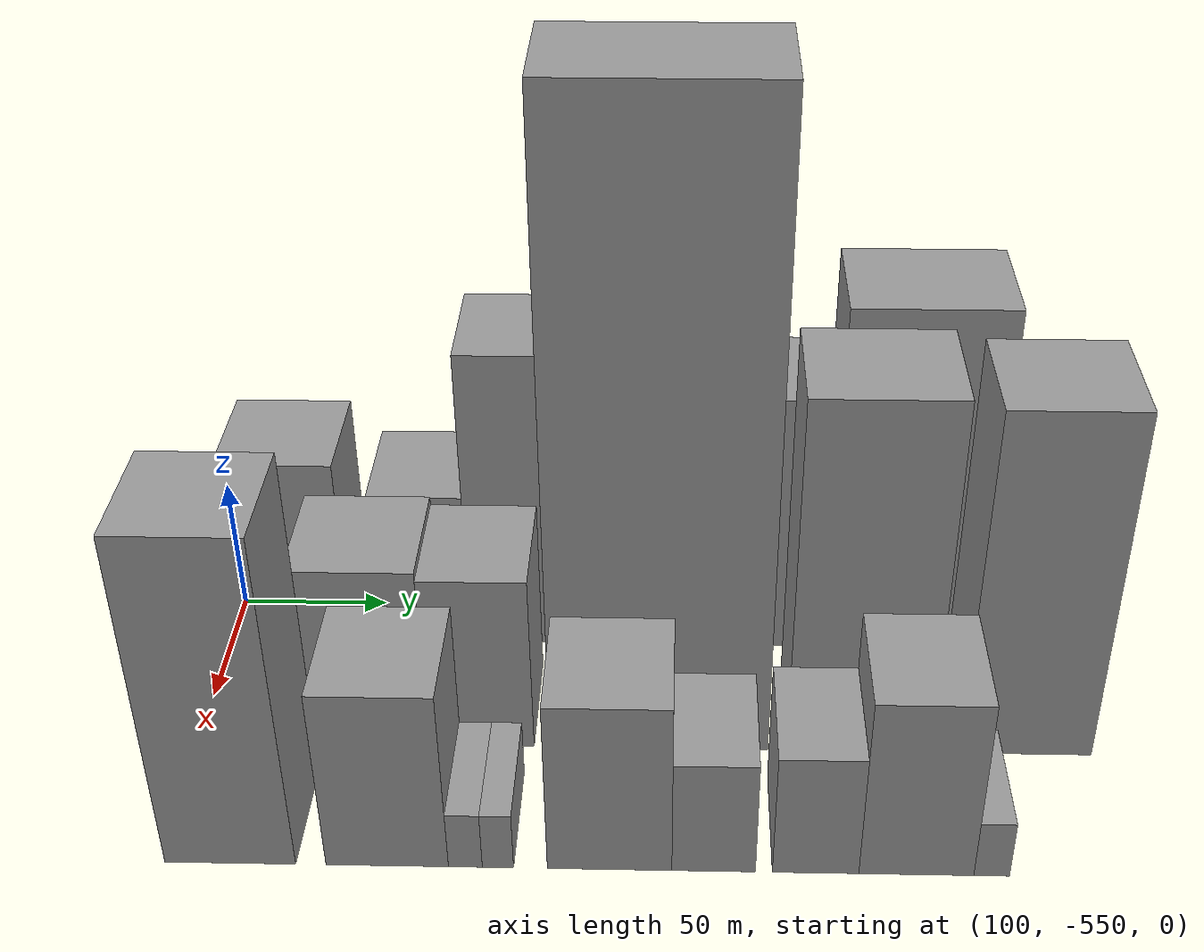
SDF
<sdf version="1.6">
 <world name="default">
  <model name="building_1">
   <static>1</static>
   <pose>100.0000 -528.5926 0 0.000000 0.000000 0.000000</pose>
   <link name="link">
    <pose>0 0 36.00 0 0 0</pose>
    <collision name="collision"><geometry><box><size>40.0000 38.8148 72.0000</size></box></geometry></collision>
    <visual name="visual">
     <cast_shadows>0</cast_shadows>
     <geometry><box><size>40.0000 38.8148 72.0000</size></box></geometry>
     <material>
      <script>
       <uri>model://grey_wall/materials/scripts</uri>
       <uri>model://grey_wall/materials/textures</uri>
       <name>vrc/grey_wall</name>
      </script>
     </material>
    </visual>
   </link>
  </model>
  <model name="building_2">
   <static>1</static>
   <pose>100.0000 -504.1947 0 0.000000 0.000000 0.000000</pose>
   <link name="link">
    <pose>0 0 10.50 0 0 0</pose>
    <collision name="collision"><geometry><box><size>40.0000 9.9809 21.0000</size></box></geometry></collision>
    <visual name="visual">
     <cast_shadows>0</cast_shadows>
     <geometry><box><size>40.0000 9.9809 21.0000</size></box></geometry>
     <material>
      <script>
       <uri>model://grey_wall/materials/scripts</uri>
       <uri>model://grey_wall/materials/textures</uri>
       <name>vrc/grey_wall</name>
      </script>
     </material>
    </visual>
   </link>
  </model>
  <model name="building_3">
   <static>1</static>
   <pose>100.0000 -483.4879 0 0.000000 0.000000 0.000000</pose>
   <link name="link">
    <pose>0 0 30.00 0 0 0</pose>
    <collision name="collision"><geometry><box><size>40.0000 31.4326 60.0000</size></box></geometry></collision>
    <visual name="visual">
     <cast_shadows>0</cast_shadows>
     <geometry><box><size>40.0000 31.4326 60.0000</size></box></geometry>
     <material>
      <script>
       <uri>model://grey_wall/materials/scripts</uri>
       <uri>model://grey_wall/materials/textures</uri>
       <name>vrc/grey_wall</name>
      </script>
     </material>
    </visual>
   </link>
  </model>
  <model name="building_4">
   <static>1</static>
   <pose>100.0000 -450.0955 0 0.000000 0.000000 0.000000</pose>
   <link name="link">
    <pose>0 0 57.00 0 0 0</pose>
    <collision name="collision"><geometry><box><size>40.0000 35.3523 114.0000</size></box></geometry></collision>
    <visual name="visual">
     <cast_shadows>0</cast_shadows>
     <geometry><box><size>40.0000 35.3523 114.0000</size></box></geometry>
     <material>
      <script>
       <uri>model://grey_wall/materials/scripts</uri>
       <uri>model://grey_wall/materials/textures</uri>
       <name>vrc/grey_wall</name>
      </script>
     </material>
    </visual>
   </link>
  </model>
  <model name="building_5">
   <static>1</static>
   <pose>100.0000 -412.2819 0 0.000000 0.000000 0.000000</pose>
   <link name="link">
    <pose>0 0 30.00 0 0 0</pose>
    <collision name="collision"><geometry><box><size>40.0000 30.2750 60.0000</size></box></geometry></collision>
    <visual name="visual">
     <cast_shadows>0</cast_shadows>
     <geometry><box><size>40.0000 30.2750 60.0000</size></box></geometry>
     <material>
      <script>
       <uri>model://grey_wall/materials/scripts</uri>
       <uri>model://grey_wall/materials/textures</uri>
       <name>vrc/grey_wall</name>
      </script>
     </material>
    </visual>
   </link>
  </model>
  <model name="building_6">
   <static>1</static>
   <pose>100.0000 -391.4086 0 0.000000 0.000000 0.000000</pose>
   <link name="link">
    <pose>0 0 12.00 0 0 0</pose>
    <collision name="collision"><geometry><box><size>40.0000 11.4717 24.0000</size></box></geometry></collision>
    <visual name="visual">
     <cast_shadows>0</cast_shadows>
     <geometry><box><size>40.0000 11.4717 24.0000</size></box></geometry>
     <material>
      <script>
       <uri>model://grey_wall/materials/scripts</uri>
       <uri>model://grey_wall/materials/textures</uri>
       <name>vrc/grey_wall</name>
      </script>
     </material>
    </visual>
   </link>
  </model>
  <model name="building_7">
   <static>1</static>
   <pose>100.0000 -362.1813 0 0.000000 0.000000 0.000000</pose>
   <link name="link">
    <pose>0 0 49.50 0 0 0</pose>
    <collision name="collision"><geometry><box><size>40.0000 32.9830 99.0000</size></box></geometry></collision>
    <visual name="visual">
     <cast_shadows>0</cast_shadows>
     <geometry><box><size>40.0000 32.9830 99.0000</size></box></geometry>
     <material>
      <script>
       <uri>model://grey_wall/materials/scripts</uri>
       <uri>model://grey_wall/materials/textures</uri>
       <name>vrc/grey_wall</name>
      </script>
     </material>
    </visual>
   </link>
  </model>
  <model name="building_8">
   <static>1</static>
   <pose>100.0000 -319.3064 0 0.000000 0.000000 0.000000</pose>
   <link name="link">
    <pose>0 0 66.00 0 0 0</pose>
    <collision name="collision"><geometry><box><size>40.0000 52.7667 132.0000</size></box></geometry></collision>
    <visual name="visual">
     <cast_shadows>0</cast_shadows>
     <geometry><box><size>40.0000 52.7667 132.0000</size></box></geometry>
     <material>
      <script>
       <uri>model://grey_wall/materials/scripts</uri>
       <uri>model://grey_wall/materials/textures</uri>
       <name>vrc/grey_wall</name>
      </script>
     </material>
    </visual>
   </link>
  </model>
  <model name="building_9">
   <static>1</static>
   <pose>100.0000 -280.9358 0 0.000000 0.000000 0.000000</pose>
   <link name="link">
    <pose>0 0 10.50 0 0 0</pose>
    <collision name="collision"><geometry><box><size>40.0000 9.9746 21.0000</size></box></geometry></collision>
    <visual name="visual">
     <cast_shadows>0</cast_shadows>
     <geometry><box><size>40.0000 9.9746 21.0000</size></box></geometry>
     <material>
      <script>
       <uri>model://grey_wall/materials/scripts</uri>
       <uri>model://grey_wall/materials/textures</uri>
       <name>vrc/grey_wall</name>
      </script>
     </material>
    </visual>
   </link>
  </model>
  <model name="building_34">
   <static>1</static>
   <pose>152.0000 -533.8637 0 0.000000 0.000000 0.000000</pose>
   <link name="link">
    <pose>0 0 24.00 0 0 0</pose>
    <collision name="collision"><geometry><box><size>40.0000 28.2725 48.0000</size></box></geometry></collision>
    <visual name="visual">
     <cast_shadows>0</cast_shadows>
     <geometry><box><size>40.0000 28.2725 48.0000</size></box></geometry>
     <material>
      <script>
       <uri>model://grey_wall/materials/scripts</uri>
       <uri>model://grey_wall/materials/textures</uri>
       <name>vrc/grey_wall</name>
      </script>
     </material>
    </visual>
   </link>
  </model>
  <model name="building_35">
   <static>1</static>
   <pose>152.0000 -495.7774 0 0.000000 0.000000 0.000000</pose>
   <link name="link">
    <pose>0 0 34.50 0 0 0</pose>
    <collision name="collision"><geometry><box><size>40.0000 39.9002 69.0000</size></box></geometry></collision>
    <visual name="visual">
     <cast_shadows>0</cast_shadows>
     <geometry><box><size>40.0000 39.9002 69.0000</size></box></geometry>
     <material>
      <script>
       <uri>model://grey_wall/materials/scripts</uri>
       <uri>model://grey_wall/materials/textures</uri>
       <name>vrc/grey_wall</name>
      </script>
     </material>
    </visual>
   </link>
  </model>
  <model name="building_36">
   <static>1</static>
   <pose>152.0000 -458.9496 0 0.000000 0.000000 0.000000</pose>
   <link name="link">
    <pose>0 0 33.00 0 0 0</pose>
    <collision name="collision"><geometry><box><size>40.0000 33.7553 66.0000</size></box></geometry></collision>
    <visual name="visual">
     <cast_shadows>0</cast_shadows>
     <geometry><box><size>40.0000 33.7553 66.0000</size></box></geometry>
     <material>
      <script>
       <uri>model://grey_wall/materials/scripts</uri>
       <uri>model://grey_wall/materials/textures</uri>
       <name>vrc/grey_wall</name>
      </script>
     </material>
    </visual>
   </link>
  </model>
  <model name="building_37">
   <static>1</static>
   <pose>152.0000 -402.2357 0 0.000000 0.000000 0.000000</pose>
   <link name="link">
    <pose>0 0 112.50 0 0 0</pose>
    <collision name="collision"><geometry><box><size>40.0000 69.6724 225.0000</size></box></geometry></collision>
    <visual name="visual">
     <cast_shadows>0</cast_shadows>
     <geometry><box><size>40.0000 69.6724 225.0000</size></box></geometry>
     <material>
      <script>
       <uri>model://grey_wall/materials/scripts</uri>
       <uri>model://grey_wall/materials/textures</uri>
       <name>vrc/grey_wall</name>
      </script>
     </material>
    </visual>
   </link>
  </model>
  <model name="building_38">
   <static>1</static>
   <pose>152.0000 -338.3357 0 0.000000 0.000000 0.000000</pose>
   <link name="link">
    <pose>0 0 66.00 0 0 0</pose>
    <collision name="collision"><geometry><box><size>40.0000 46.1275 132.0000</size></box></geometry></collision>
    <visual name="visual">
     <cast_shadows>0</cast_shadows>
     <geometry><box><size>40.0000 46.1275 132.0000</size></box></geometry>
     <material>
      <script>
       <uri>model://grey_wall/materials/scripts</uri>
       <uri>model://grey_wall/materials/textures</uri>
       <name>vrc/grey_wall</name>
      </script>
     </material>
    </visual>
   </link>
  </model>
  <model name="building_39">
   <static>1</static>
   <pose>152.0000 -285.3753 0 0.000000 0.000000 0.000000</pose>
   <link name="link">
    <pose>0 0 64.50 0 0 0</pose>
    <collision name="collision"><geometry><box><size>40.0000 41.7935 129.0000</size></box></geometry></collision>
    <visual name="visual">
     <cast_shadows>0</cast_shadows>
     <geometry><box><size>40.0000 41.7935 129.0000</size></box></geometry>
     <material>
      <script>
       <uri>model://grey_wall/materials/scripts</uri>
       <uri>model://grey_wall/materials/textures</uri>
       <name>vrc/grey_wall</name>
      </script>
     </material>
    </visual>
   </link>
  </model>
  <model name="building_64">
   <static>1</static>
   <pose>204.0000 -528.4999 0 0.000000 0.000000 0.000000</pose>
   <link name="link">
    <pose>0 0 60.00 0 0 0</pose>
    <collision name="collision"><geometry><box><size>40.0000 39.0002 120.0000</size></box></geometry></collision>
    <visual name="visual">
     <cast_shadows>0</cast_shadows>
     <geometry><box><size>40.0000 39.0002 120.0000</size></box></geometry>
     <material>
      <script>
       <uri>model://grey_wall/materials/scripts</uri>
       <uri>model://grey_wall/materials/textures</uri>
       <name>vrc/grey_wall</name>
      </script>
     </material>
    </visual>
   </link>
  </model>
  <model name="building_65">
   <static>1</static>
   <pose>204.0000 -481.8135 0 0.000000 0.000000 0.000000</pose>
   <link name="link">
    <pose>0 0 33.00 0 0 0</pose>
    <collision name="collision"><geometry><box><size>40.0000 36.3725 66.0000</size></box></geometry></collision>
    <visual name="visual">
     <cast_shadows>0</cast_shadows>
     <geometry><box><size>40.0000 36.3725 66.0000</size></box></geometry>
     <material>
      <script>
       <uri>model://grey_wall/materials/scripts</uri>
       <uri>model://grey_wall/materials/textures</uri>
       <name>vrc/grey_wall</name>
      </script>
     </material>
    </visual>
   </link>
  </model>
  <model name="building_66">
   <static>1</static>
   <pose>204.0000 -458.6010 0 0.000000 0.000000 0.000000</pose>
   <link name="link">
    <pose>0 0 10.50 0 0 0</pose>
    <collision name="collision"><geometry><box><size>40.0000 10.0527 21.0000</size></box></geometry></collision>
    <visual name="visual">
     <cast_shadows>0</cast_shadows>
     <geometry><box><size>40.0000 10.0527 21.0000</size></box></geometry>
     <material>
      <script>
       <uri>model://grey_wall/materials/scripts</uri>
       <uri>model://grey_wall/materials/textures</uri>
       <name>vrc/grey_wall</name>
      </script>
     </material>
    </visual>
   </link>
  </model>
  <model name="building_67">
   <static>1</static>
   <pose>204.0000 -448.9390 0 0.000000 0.000000 0.000000</pose>
   <link name="link">
    <pose>0 0 10.50 0 0 0</pose>
    <collision name="collision"><geometry><box><size>40.0000 9.2712 21.0000</size></box></geometry></collision>
    <visual name="visual">
     <cast_shadows>0</cast_shadows>
     <geometry><box><size>40.0000 9.2712 21.0000</size></box></geometry>
     <material>
      <script>
       <uri>model://grey_wall/materials/scripts</uri>
       <uri>model://grey_wall/materials/textures</uri>
       <name>vrc/grey_wall</name>
      </script>
     </material>
    </visual>
   </link>
  </model>
  <model name="building_68">
   <static>1</static>
   <pose>204.0000 -415.8961 0 0.000000 0.000000 0.000000</pose>
   <link name="link">
    <pose>0 0 31.50 0 0 0</pose>
    <collision name="collision"><geometry><box><size>40.0000 36.8146 63.0000</size></box></geometry></collision>
    <visual name="visual">
     <cast_shadows>0</cast_shadows>
     <geometry><box><size>40.0000 36.8146 63.0000</size></box></geometry>
     <material>
      <script>
       <uri>model://grey_wall/materials/scripts</uri>
       <uri>model://grey_wall/materials/textures</uri>
       <name>vrc/grey_wall</name>
      </script>
     </material>
    </visual>
   </link>
  </model>
  <model name="building_69">
   <static>1</static>
   <pose>204.0000 -385.1619 0 0.000000 0.000000 0.000000</pose>
   <link name="link">
    <pose>0 0 21.00 0 0 0</pose>
    <collision name="collision"><geometry><box><size>40.0000 24.6538 42.0000</size></box></geometry></collision>
    <visual name="visual">
     <cast_shadows>0</cast_shadows>
     <geometry><box><size>40.0000 24.6538 42.0000</size></box></geometry>
     <material>
      <script>
       <uri>model://grey_wall/materials/scripts</uri>
       <uri>model://grey_wall/materials/textures</uri>
       <name>vrc/grey_wall</name>
      </script>
     </material>
    </visual>
   </link>
  </model>
  <model name="building_70">
   <static>1</static>
   <pose>204.0000 -355.1180 0 0.000000 0.000000 0.000000</pose>
   <link name="link">
    <pose>0 0 22.50 0 0 0</pose>
    <collision name="collision"><geometry><box><size>40.0000 25.4339 45.0000</size></box></geometry></collision>
    <visual name="visual">
     <cast_shadows>0</cast_shadows>
     <geometry><box><size>40.0000 25.4339 45.0000</size></box></geometry>
     <material>
      <script>
       <uri>model://grey_wall/materials/scripts</uri>
       <uri>model://grey_wall/materials/textures</uri>
       <name>vrc/grey_wall</name>
      </script>
     </material>
    </visual>
   </link>
  </model>
  <model name="building_71">
   <static>1</static>
   <pose>204.0000 -325.5068 0 0.000000 0.000000 0.000000</pose>
   <link name="link">
    <pose>0 0 33.00 0 0 0</pose>
    <collision name="collision"><geometry><box><size>40.0000 33.7886 66.0000</size></box></geometry></collision>
    <visual name="visual">
     <cast_shadows>0</cast_shadows>
     <geometry><box><size>40.0000 33.7886 66.0000</size></box></geometry>
     <material>
      <script>
       <uri>model://grey_wall/materials/scripts</uri>
       <uri>model://grey_wall/materials/textures</uri>
       <name>vrc/grey_wall</name>
      </script>
     </material>
    </visual>
   </link>
  </model>
  <model name="building_72">
   <static>1</static>
   <pose>204.0000 -303.3809 0 0.000000 0.000000 0.000000</pose>
   <link name="link">
    <pose>0 0 10.50 0 0 0</pose>
    <collision name="collision"><geometry><box><size>40.0000 10.4632 21.0000</size></box></geometry></collision>
    <visual name="visual">
     <cast_shadows>0</cast_shadows>
     <geometry><box><size>40.0000 10.4632 21.0000</size></box></geometry>
     <material>
      <script>
       <uri>model://grey_wall/materials/scripts</uri>
       <uri>model://grey_wall/materials/textures</uri>
       <name>vrc/grey_wall</name>
      </script>
     </material>
    </visual>
   </link>
  </model>
 </world>
</sdf>
